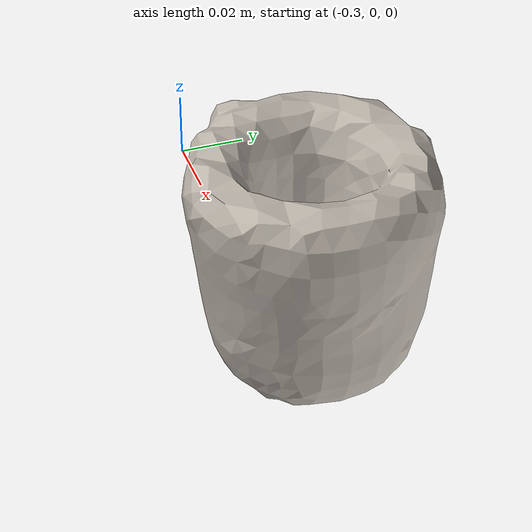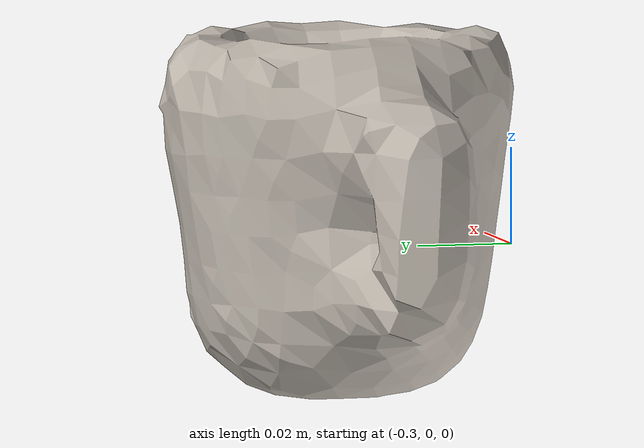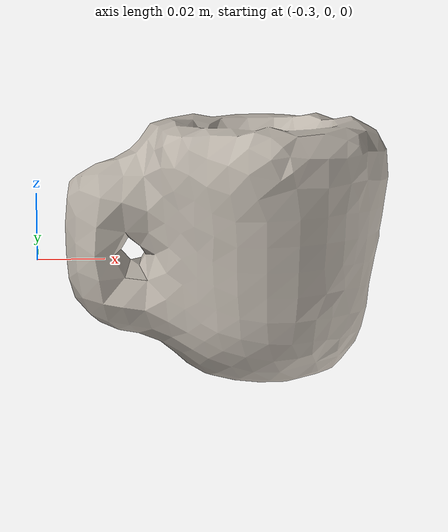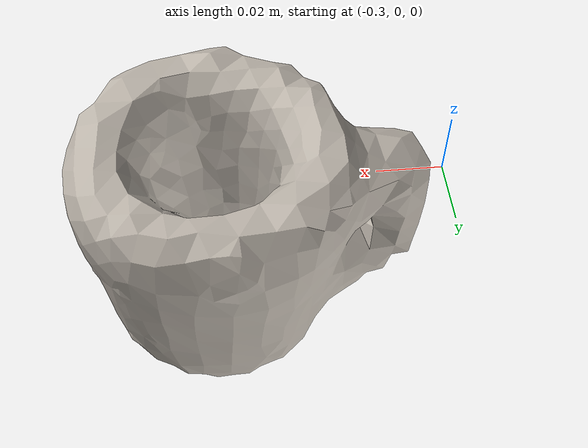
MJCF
<mujoco model="mug_Room_Essentials_Mug_White_Yellow_M">
  <asset>
    <mesh file="meshes/mug_Room_Essentials_Mug_White_Yellow_M.stl" name="mug_mesh" scale="0.6340478499286979 0.6340478499286979 0.6340478499286979"/>
    <texture type="cube" file="/home/jbw/Projects/gc-reorientation/bin_env/assets/textures/ceramic.png" rgb1="1 1 1" name="tex-mug"/>
    <material name="mug" reflectance="0.5" texrepeat="3 3" texture="tex-mug"/>
  </asset>
  <worldbody>
    <body>
      <body name="object">
        <geom pos="-0.23376682798452755 0.019549382531966253 0.0006877849147816666" quat="1 0 0 0" mesh="mug_mesh" type="mesh" solref="0.02 1" density="0" friction="1.0 1.0 1.0" material="mug" group="0" condim="4"/>
      </body>
      <site rgba="0 0 0 0" size="0.005" pos="0 0 -0.05" name="bottom_site"/>
      <site rgba="0 0 0 0" size="0.005" pos="0 0 0.03" name="top_site"/>
      <site rgba="0 0 0 0" size="0.005" pos="0.02 0.015 0" name="horizontal_radius_site"/>
    </body>
  </worldbody>
</mujoco>
